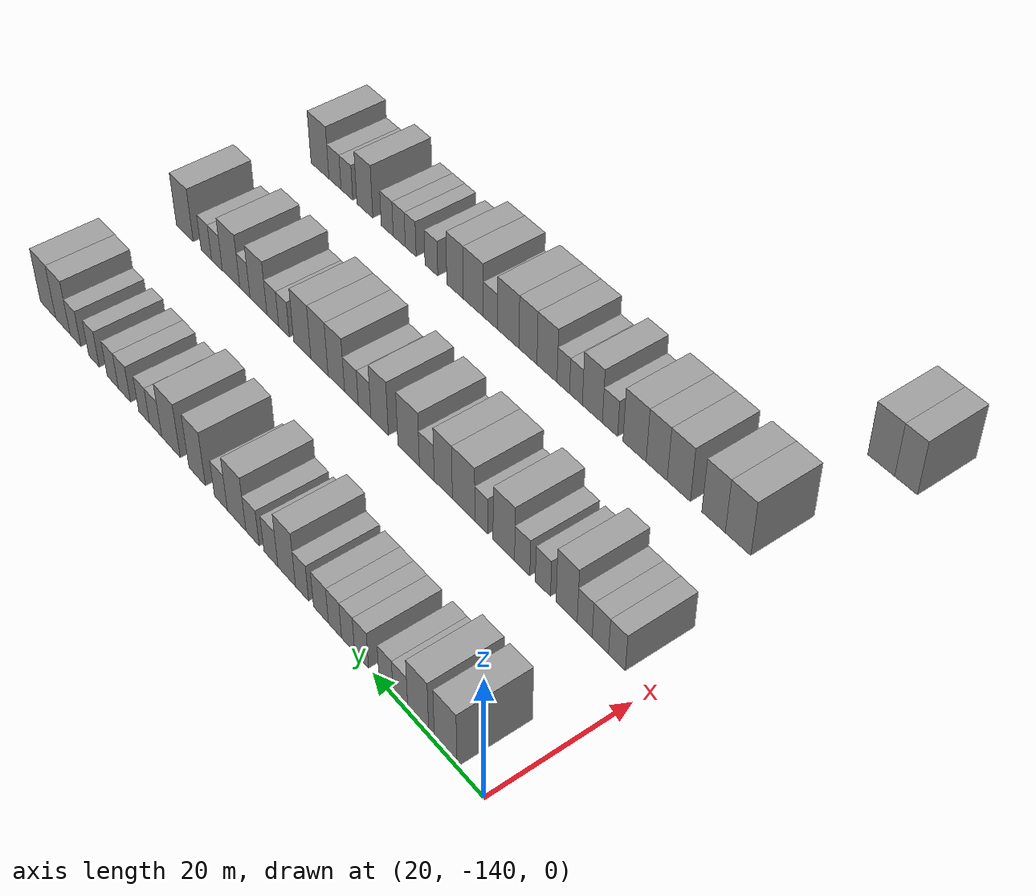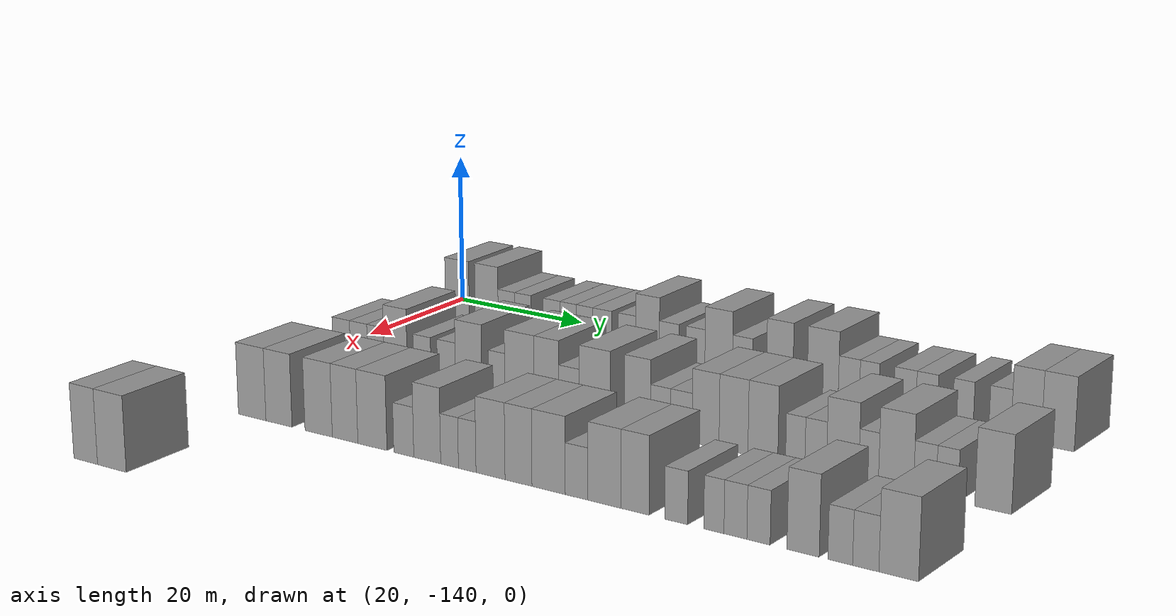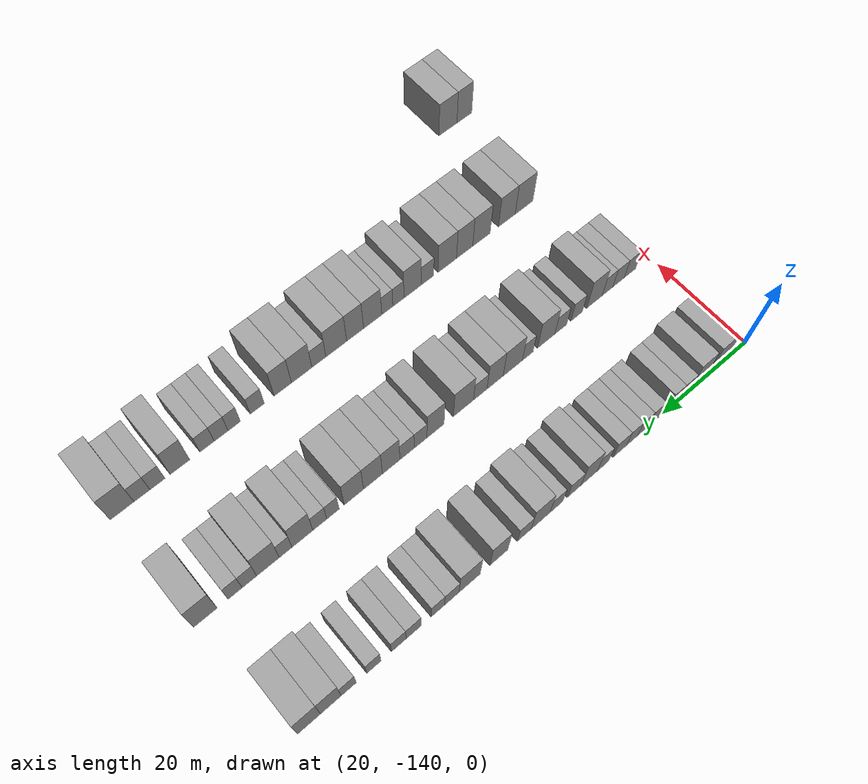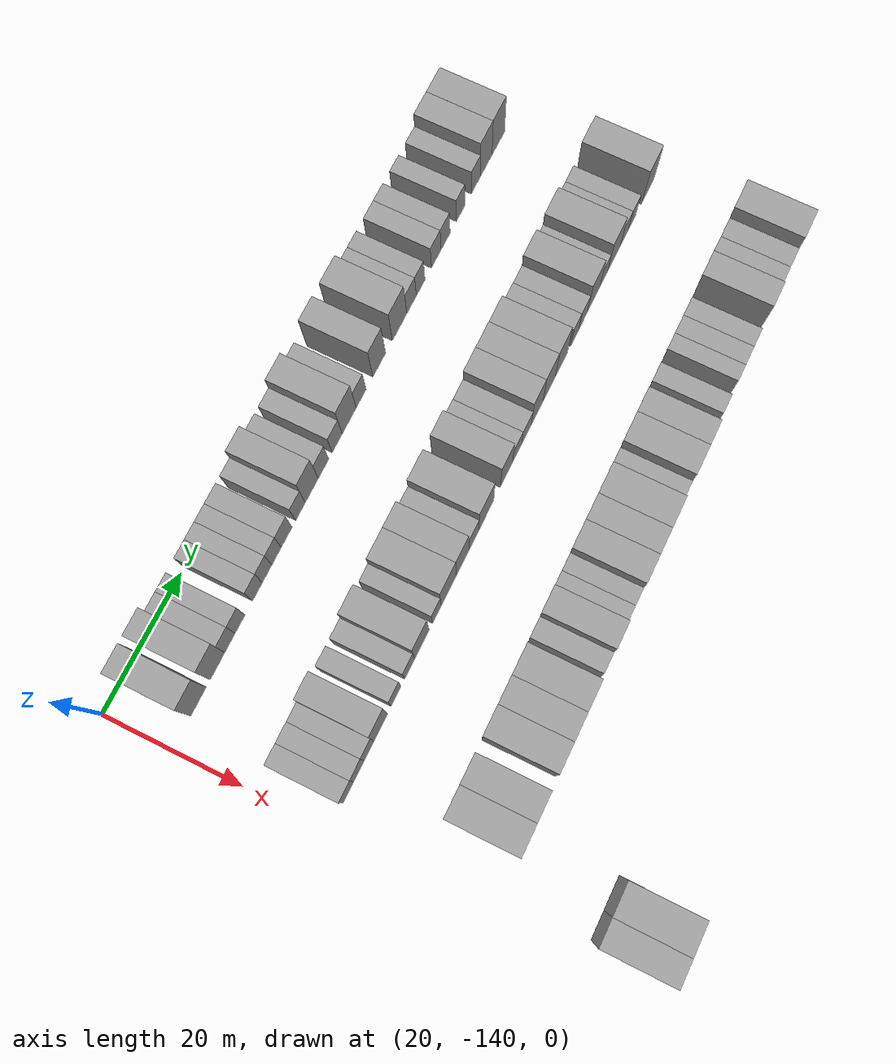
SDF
<sdf version="1.6">
 <world name="default">
  <model name="building_61">
   <static>1</static>
   <pose>25.0000 -133.2945 0 0.000000 0.000000 0.000000</pose>
   <link name="link">
    <pose>0 0 4.50 0 0 0</pose>
    <collision name="collision"><geometry><box><size>10.0000 3.9825 9.0000</size></box></geometry></collision>
    <visual name="visual">
     <cast_shadows>0</cast_shadows>
     <geometry><box><size>10.0000 3.9825 9.0000</size></box></geometry>
     <material>
      <script>
       <uri>model://grey_wall/materials/scripts</uri>
       <uri>model://grey_wall/materials/textures</uri>
       <name>vrc/grey_wall</name>
      </script>
     </material>
    </visual>
   </link>
  </model>
  <model name="building_62">
   <static>1</static>
   <pose>25.0000 -128.4041 0 0.000000 0.000000 0.000000</pose>
   <link name="link">
    <pose>0 0 4.50 0 0 0</pose>
    <collision name="collision"><geometry><box><size>10.0000 3.7982 9.0000</size></box></geometry></collision>
    <visual name="visual">
     <cast_shadows>0</cast_shadows>
     <geometry><box><size>10.0000 3.7982 9.0000</size></box></geometry>
     <material>
      <script>
       <uri>model://grey_wall/materials/scripts</uri>
       <uri>model://grey_wall/materials/textures</uri>
       <name>vrc/grey_wall</name>
      </script>
     </material>
    </visual>
   </link>
  </model>
  <model name="building_63">
   <static>1</static>
   <pose>25.0000 -125.1528 0 0.000000 0.000000 0.000000</pose>
   <link name="link">
    <pose>0 0 3.00 0 0 0</pose>
    <collision name="collision"><geometry><box><size>10.0000 2.7044 6.0000</size></box></geometry></collision>
    <visual name="visual">
     <cast_shadows>0</cast_shadows>
     <geometry><box><size>10.0000 2.7044 6.0000</size></box></geometry>
     <material>
      <script>
       <uri>model://grey_wall/materials/scripts</uri>
       <uri>model://grey_wall/materials/textures</uri>
       <name>vrc/grey_wall</name>
      </script>
     </material>
    </visual>
   </link>
  </model>
  <model name="building_64">
   <static>1</static>
   <pose>25.0000 -122.4836 0 0.000000 0.000000 0.000000</pose>
   <link name="link">
    <pose>0 0 3.00 0 0 0</pose>
    <collision name="collision"><geometry><box><size>10.0000 2.6340 6.0000</size></box></geometry></collision>
    <visual name="visual">
     <cast_shadows>0</cast_shadows>
     <geometry><box><size>10.0000 2.6340 6.0000</size></box></geometry>
     <material>
      <script>
       <uri>model://grey_wall/materials/scripts</uri>
       <uri>model://grey_wall/materials/textures</uri>
       <name>vrc/grey_wall</name>
      </script>
     </material>
    </visual>
   </link>
  </model>
  <model name="building_65">
   <static>1</static>
   <pose>25.0000 -117.8355 0 0.000000 0.000000 0.000000</pose>
   <link name="link">
    <pose>0 0 3.00 0 0 0</pose>
    <collision name="collision"><geometry><box><size>10.0000 2.6623 6.0000</size></box></geometry></collision>
    <visual name="visual">
     <cast_shadows>0</cast_shadows>
     <geometry><box><size>10.0000 2.6623 6.0000</size></box></geometry>
     <material>
      <script>
       <uri>model://grey_wall/materials/scripts</uri>
       <uri>model://grey_wall/materials/textures</uri>
       <name>vrc/grey_wall</name>
      </script>
     </material>
    </visual>
   </link>
  </model>
  <model name="building_66">
   <static>1</static>
   <pose>25.0000 -115.2223 0 0.000000 0.000000 0.000000</pose>
   <link name="link">
    <pose>0 0 3.00 0 0 0</pose>
    <collision name="collision"><geometry><box><size>10.0000 2.5640 6.0000</size></box></geometry></collision>
    <visual name="visual">
     <cast_shadows>0</cast_shadows>
     <geometry><box><size>10.0000 2.5640 6.0000</size></box></geometry>
     <material>
      <script>
       <uri>model://grey_wall/materials/scripts</uri>
       <uri>model://grey_wall/materials/textures</uri>
       <name>vrc/grey_wall</name>
      </script>
     </material>
    </visual>
   </link>
  </model>
  <model name="building_67">
   <static>1</static>
   <pose>25.0000 -112.6563 0 0.000000 0.000000 0.000000</pose>
   <link name="link">
    <pose>0 0 3.00 0 0 0</pose>
    <collision name="collision"><geometry><box><size>10.0000 2.5680 6.0000</size></box></geometry></collision>
    <visual name="visual">
     <cast_shadows>0</cast_shadows>
     <geometry><box><size>10.0000 2.5680 6.0000</size></box></geometry>
     <material>
      <script>
       <uri>model://grey_wall/materials/scripts</uri>
       <uri>model://grey_wall/materials/textures</uri>
       <name>vrc/grey_wall</name>
      </script>
     </material>
    </visual>
   </link>
  </model>
  <model name="building_68">
   <static>1</static>
   <pose>25.0000 -109.8868 0 0.000000 0.000000 0.000000</pose>
   <link name="link">
    <pose>0 0 3.00 0 0 0</pose>
    <collision name="collision"><geometry><box><size>10.0000 2.9711 6.0000</size></box></geometry></collision>
    <visual name="visual">
     <cast_shadows>0</cast_shadows>
     <geometry><box><size>10.0000 2.9711 6.0000</size></box></geometry>
     <material>
      <script>
       <uri>model://grey_wall/materials/scripts</uri>
       <uri>model://grey_wall/materials/textures</uri>
       <name>vrc/grey_wall</name>
      </script>
     </material>
    </visual>
   </link>
  </model>
  <model name="building_69">
   <static>1</static>
   <pose>25.0000 -106.0646 0 0.000000 0.000000 0.000000</pose>
   <link name="link">
    <pose>0 0 3.00 0 0 0</pose>
    <collision name="collision"><geometry><box><size>10.0000 2.6733 6.0000</size></box></geometry></collision>
    <visual name="visual">
     <cast_shadows>0</cast_shadows>
     <geometry><box><size>10.0000 2.6733 6.0000</size></box></geometry>
     <material>
      <script>
       <uri>model://grey_wall/materials/scripts</uri>
       <uri>model://grey_wall/materials/textures</uri>
       <name>vrc/grey_wall</name>
      </script>
     </material>
    </visual>
   </link>
  </model>
  <model name="building_70">
   <static>1</static>
   <pose>25.0000 -102.9174 0 0.000000 0.000000 0.000000</pose>
   <link name="link">
    <pose>0 0 4.50 0 0 0</pose>
    <collision name="collision"><geometry><box><size>10.0000 3.6209 9.0000</size></box></geometry></collision>
    <visual name="visual">
     <cast_shadows>0</cast_shadows>
     <geometry><box><size>10.0000 3.6209 9.0000</size></box></geometry>
     <material>
      <script>
       <uri>model://grey_wall/materials/scripts</uri>
       <uri>model://grey_wall/materials/textures</uri>
       <name>vrc/grey_wall</name>
      </script>
     </material>
    </visual>
   </link>
  </model>
  <model name="building_71">
   <static>1</static>
   <pose>25.0000 -99.6323 0 0.000000 0.000000 0.000000</pose>
   <link name="link">
    <pose>0 0 3.00 0 0 0</pose>
    <collision name="collision"><geometry><box><size>10.0000 2.9495 6.0000</size></box></geometry></collision>
    <visual name="visual">
     <cast_shadows>0</cast_shadows>
     <geometry><box><size>10.0000 2.9495 6.0000</size></box></geometry>
     <material>
      <script>
       <uri>model://grey_wall/materials/scripts</uri>
       <uri>model://grey_wall/materials/textures</uri>
       <name>vrc/grey_wall</name>
      </script>
     </material>
    </visual>
   </link>
  </model>
  <model name="building_72">
   <static>1</static>
   <pose>25.0000 -95.7354 0 0.000000 0.000000 0.000000</pose>
   <link name="link">
    <pose>0 0 3.00 0 0 0</pose>
    <collision name="collision"><geometry><box><size>10.0000 2.8443 6.0000</size></box></geometry></collision>
    <visual name="visual">
     <cast_shadows>0</cast_shadows>
     <geometry><box><size>10.0000 2.8443 6.0000</size></box></geometry>
     <material>
      <script>
       <uri>model://grey_wall/materials/scripts</uri>
       <uri>model://grey_wall/materials/textures</uri>
       <name>vrc/grey_wall</name>
      </script>
     </material>
    </visual>
   </link>
  </model>
  <model name="building_73">
   <static>1</static>
   <pose>25.0000 -92.3011 0 0.000000 0.000000 0.000000</pose>
   <link name="link">
    <pose>0 0 4.50 0 0 0</pose>
    <collision name="collision"><geometry><box><size>10.0000 4.0243 9.0000</size></box></geometry></collision>
    <visual name="visual">
     <cast_shadows>0</cast_shadows>
     <geometry><box><size>10.0000 4.0243 9.0000</size></box></geometry>
     <material>
      <script>
       <uri>model://grey_wall/materials/scripts</uri>
       <uri>model://grey_wall/materials/textures</uri>
       <name>vrc/grey_wall</name>
      </script>
     </material>
    </visual>
   </link>
  </model>
  <model name="building_74">
   <static>1</static>
   <pose>25.0000 -88.8391 0 0.000000 0.000000 0.000000</pose>
   <link name="link">
    <pose>0 0 3.00 0 0 0</pose>
    <collision name="collision"><geometry><box><size>10.0000 2.8996 6.0000</size></box></geometry></collision>
    <visual name="visual">
     <cast_shadows>0</cast_shadows>
     <geometry><box><size>10.0000 2.8996 6.0000</size></box></geometry>
     <material>
      <script>
       <uri>model://grey_wall/materials/scripts</uri>
       <uri>model://grey_wall/materials/textures</uri>
       <name>vrc/grey_wall</name>
      </script>
     </material>
    </visual>
   </link>
  </model>
  <model name="building_75">
   <static>1</static>
   <pose>25.0000 -83.5096 0 0.000000 0.000000 0.000000</pose>
   <link name="link">
    <pose>0 0 4.50 0 0 0</pose>
    <collision name="collision"><geometry><box><size>10.0000 3.7595 9.0000</size></box></geometry></collision>
    <visual name="visual">
     <cast_shadows>0</cast_shadows>
     <geometry><box><size>10.0000 3.7595 9.0000</size></box></geometry>
     <material>
      <script>
       <uri>model://grey_wall/materials/scripts</uri>
       <uri>model://grey_wall/materials/textures</uri>
       <name>vrc/grey_wall</name>
      </script>
     </material>
    </visual>
   </link>
  </model>
  <model name="building_76">
   <static>1</static>
   <pose>25.0000 -77.4636 0 0.000000 0.000000 0.000000</pose>
   <link name="link">
    <pose>0 0 4.50 0 0 0</pose>
    <collision name="collision"><geometry><box><size>10.0000 4.3325 9.0000</size></box></geometry></collision>
    <visual name="visual">
     <cast_shadows>0</cast_shadows>
     <geometry><box><size>10.0000 4.3325 9.0000</size></box></geometry>
     <material>
      <script>
       <uri>model://grey_wall/materials/scripts</uri>
       <uri>model://grey_wall/materials/textures</uri>
       <name>vrc/grey_wall</name>
      </script>
     </material>
    </visual>
   </link>
  </model>
  <model name="building_77">
   <static>1</static>
   <pose>25.0000 -73.8470 0 0.000000 0.000000 0.000000</pose>
   <link name="link">
    <pose>0 0 3.00 0 0 0</pose>
    <collision name="collision"><geometry><box><size>10.0000 2.9005 6.0000</size></box></geometry></collision>
    <visual name="visual">
     <cast_shadows>0</cast_shadows>
     <geometry><box><size>10.0000 2.9005 6.0000</size></box></geometry>
     <material>
      <script>
       <uri>model://grey_wall/materials/scripts</uri>
       <uri>model://grey_wall/materials/textures</uri>
       <name>vrc/grey_wall</name>
      </script>
     </material>
    </visual>
   </link>
  </model>
  <model name="building_78">
   <static>1</static>
   <pose>25.0000 -71.0842 0 0.000000 0.000000 0.000000</pose>
   <link name="link">
    <pose>0 0 3.00 0 0 0</pose>
    <collision name="collision"><geometry><box><size>10.0000 2.6250 6.0000</size></box></geometry></collision>
    <visual name="visual">
     <cast_shadows>0</cast_shadows>
     <geometry><box><size>10.0000 2.6250 6.0000</size></box></geometry>
     <material>
      <script>
       <uri>model://grey_wall/materials/scripts</uri>
       <uri>model://grey_wall/materials/textures</uri>
       <name>vrc/grey_wall</name>
      </script>
     </material>
    </visual>
   </link>
  </model>
  <model name="building_79">
   <static>1</static>
   <pose>25.0000 -66.2901 0 0.000000 0.000000 0.000000</pose>
   <link name="link">
    <pose>0 0 3.00 0 0 0</pose>
    <collision name="collision"><geometry><box><size>10.0000 2.9633 6.0000</size></box></geometry></collision>
    <visual name="visual">
     <cast_shadows>0</cast_shadows>
     <geometry><box><size>10.0000 2.9633 6.0000</size></box></geometry>
     <material>
      <script>
       <uri>model://grey_wall/materials/scripts</uri>
       <uri>model://grey_wall/materials/textures</uri>
       <name>vrc/grey_wall</name>
      </script>
     </material>
    </visual>
   </link>
  </model>
  <model name="building_80">
   <static>1</static>
   <pose>25.0000 -63.4003 0 0.000000 0.000000 0.000000</pose>
   <link name="link">
    <pose>0 0 3.00 0 0 0</pose>
    <collision name="collision"><geometry><box><size>10.0000 2.8163 6.0000</size></box></geometry></collision>
    <visual name="visual">
     <cast_shadows>0</cast_shadows>
     <geometry><box><size>10.0000 2.8163 6.0000</size></box></geometry>
     <material>
      <script>
       <uri>model://grey_wall/materials/scripts</uri>
       <uri>model://grey_wall/materials/textures</uri>
       <name>vrc/grey_wall</name>
      </script>
     </material>
    </visual>
   </link>
  </model>
  <model name="building_81">
   <static>1</static>
   <pose>25.0000 -58.6390 0 0.000000 0.000000 0.000000</pose>
   <link name="link">
    <pose>0 0 3.00 0 0 0</pose>
    <collision name="collision"><geometry><box><size>10.0000 2.7062 6.0000</size></box></geometry></collision>
    <visual name="visual">
     <cast_shadows>0</cast_shadows>
     <geometry><box><size>10.0000 2.7062 6.0000</size></box></geometry>
     <material>
      <script>
       <uri>model://grey_wall/materials/scripts</uri>
       <uri>model://grey_wall/materials/textures</uri>
       <name>vrc/grey_wall</name>
      </script>
     </material>
    </visual>
   </link>
  </model>
  <model name="building_82">
   <static>1</static>
   <pose>25.0000 -53.8731 0 0.000000 0.000000 0.000000</pose>
   <link name="link">
    <pose>0 0 3.00 0 0 0</pose>
    <collision name="collision"><geometry><box><size>10.0000 2.8256 6.0000</size></box></geometry></collision>
    <visual name="visual">
     <cast_shadows>0</cast_shadows>
     <geometry><box><size>10.0000 2.8256 6.0000</size></box></geometry>
     <material>
      <script>
       <uri>model://grey_wall/materials/scripts</uri>
       <uri>model://grey_wall/materials/textures</uri>
       <name>vrc/grey_wall</name>
      </script>
     </material>
    </visual>
   </link>
  </model>
  <model name="building_83">
   <static>1</static>
   <pose>25.0000 -50.5525 0 0.000000 0.000000 0.000000</pose>
   <link name="link">
    <pose>0 0 4.50 0 0 0</pose>
    <collision name="collision"><geometry><box><size>10.0000 3.8157 9.0000</size></box></geometry></collision>
    <visual name="visual">
     <cast_shadows>0</cast_shadows>
     <geometry><box><size>10.0000 3.8157 9.0000</size></box></geometry>
     <material>
      <script>
       <uri>model://grey_wall/materials/scripts</uri>
       <uri>model://grey_wall/materials/textures</uri>
       <name>vrc/grey_wall</name>
      </script>
     </material>
    </visual>
   </link>
  </model>
  <model name="building_84">
   <static>1</static>
   <pose>25.0000 -46.5881 0 0.000000 0.000000 0.000000</pose>
   <link name="link">
    <pose>0 0 4.50 0 0 0</pose>
    <collision name="collision"><geometry><box><size>10.0000 4.1129 9.0000</size></box></geometry></collision>
    <visual name="visual">
     <cast_shadows>0</cast_shadows>
     <geometry><box><size>10.0000 4.1129 9.0000</size></box></geometry>
     <material>
      <script>
       <uri>model://grey_wall/materials/scripts</uri>
       <uri>model://grey_wall/materials/textures</uri>
       <name>vrc/grey_wall</name>
      </script>
     </material>
    </visual>
   </link>
  </model>
  <model name="building_256">
   <static>1</static>
   <pose>47.0000 -134.8797 0 0.000000 0.000000 0.000000</pose>
   <link name="link">
    <pose>0 0 3.00 0 0 0</pose>
    <collision name="collision"><geometry><box><size>10.0000 2.8707 6.0000</size></box></geometry></collision>
    <visual name="visual">
     <cast_shadows>0</cast_shadows>
     <geometry><box><size>10.0000 2.8707 6.0000</size></box></geometry>
     <material>
      <script>
       <uri>model://grey_wall/materials/scripts</uri>
       <uri>model://grey_wall/materials/textures</uri>
       <name>vrc/grey_wall</name>
      </script>
     </material>
    </visual>
   </link>
  </model>
  <model name="building_257">
   <static>1</static>
   <pose>47.0000 -132.0380 0 0.000000 0.000000 0.000000</pose>
   <link name="link">
    <pose>0 0 3.00 0 0 0</pose>
    <collision name="collision"><geometry><box><size>10.0000 2.8127 6.0000</size></box></geometry></collision>
    <visual name="visual">
     <cast_shadows>0</cast_shadows>
     <geometry><box><size>10.0000 2.8127 6.0000</size></box></geometry>
     <material>
      <script>
       <uri>model://grey_wall/materials/scripts</uri>
       <uri>model://grey_wall/materials/textures</uri>
       <name>vrc/grey_wall</name>
      </script>
     </material>
    </visual>
   </link>
  </model>
  <model name="building_258">
   <static>1</static>
   <pose>47.0000 -129.3125 0 0.000000 0.000000 0.000000</pose>
   <link name="link">
    <pose>0 0 3.00 0 0 0</pose>
    <collision name="collision"><geometry><box><size>10.0000 2.6383 6.0000</size></box></geometry></collision>
    <visual name="visual">
     <cast_shadows>0</cast_shadows>
     <geometry><box><size>10.0000 2.6383 6.0000</size></box></geometry>
     <material>
      <script>
       <uri>model://grey_wall/materials/scripts</uri>
       <uri>model://grey_wall/materials/textures</uri>
       <name>vrc/grey_wall</name>
      </script>
     </material>
    </visual>
   </link>
  </model>
  <model name="building_259">
   <static>1</static>
   <pose>47.0000 -126.1210 0 0.000000 0.000000 0.000000</pose>
   <link name="link">
    <pose>0 0 4.50 0 0 0</pose>
    <collision name="collision"><geometry><box><size>10.0000 3.7447 9.0000</size></box></geometry></collision>
    <visual name="visual">
     <cast_shadows>0</cast_shadows>
     <geometry><box><size>10.0000 3.7447 9.0000</size></box></geometry>
     <material>
      <script>
       <uri>model://grey_wall/materials/scripts</uri>
       <uri>model://grey_wall/materials/textures</uri>
       <name>vrc/grey_wall</name>
      </script>
     </material>
    </visual>
   </link>
  </model>
  <model name="building_260">
   <static>1</static>
   <pose>47.0000 -121.8693 0 0.000000 0.000000 0.000000</pose>
   <link name="link">
    <pose>0 0 3.00 0 0 0</pose>
    <collision name="collision"><geometry><box><size>10.0000 2.7587 6.0000</size></box></geometry></collision>
    <visual name="visual">
     <cast_shadows>0</cast_shadows>
     <geometry><box><size>10.0000 2.7587 6.0000</size></box></geometry>
     <material>
      <script>
       <uri>model://grey_wall/materials/scripts</uri>
       <uri>model://grey_wall/materials/textures</uri>
       <name>vrc/grey_wall</name>
      </script>
     </material>
    </visual>
   </link>
  </model>
  <model name="building_261">
   <static>1</static>
   <pose>47.0000 -118.0780 0 0.000000 0.000000 0.000000</pose>
   <link name="link">
    <pose>0 0 3.00 0 0 0</pose>
    <collision name="collision"><geometry><box><size>10.0000 2.8239 6.0000</size></box></geometry></collision>
    <visual name="visual">
     <cast_shadows>0</cast_shadows>
     <geometry><box><size>10.0000 2.8239 6.0000</size></box></geometry>
     <material>
      <script>
       <uri>model://grey_wall/materials/scripts</uri>
       <uri>model://grey_wall/materials/textures</uri>
       <name>vrc/grey_wall</name>
      </script>
     </material>
    </visual>
   </link>
  </model>
  <model name="building_262">
   <static>1</static>
   <pose>47.0000 -114.6399 0 0.000000 0.000000 0.000000</pose>
   <link name="link">
    <pose>0 0 4.50 0 0 0</pose>
    <collision name="collision"><geometry><box><size>10.0000 4.0524 9.0000</size></box></geometry></collision>
    <visual name="visual">
     <cast_shadows>0</cast_shadows>
     <geometry><box><size>10.0000 4.0524 9.0000</size></box></geometry>
     <material>
      <script>
       <uri>model://grey_wall/materials/scripts</uri>
       <uri>model://grey_wall/materials/textures</uri>
       <name>vrc/grey_wall</name>
      </script>
     </material>
    </visual>
   </link>
  </model>
  <model name="building_263">
   <static>1</static>
   <pose>47.0000 -110.3734 0 0.000000 0.000000 0.000000</pose>
   <link name="link">
    <pose>0 0 3.00 0 0 0</pose>
    <collision name="collision"><geometry><box><size>10.0000 2.4806 6.0000</size></box></geometry></collision>
    <visual name="visual">
     <cast_shadows>0</cast_shadows>
     <geometry><box><size>10.0000 2.4806 6.0000</size></box></geometry>
     <material>
      <script>
       <uri>model://grey_wall/materials/scripts</uri>
       <uri>model://grey_wall/materials/textures</uri>
       <name>vrc/grey_wall</name>
      </script>
     </material>
    </visual>
   </link>
  </model>
  <model name="building_264">
   <static>1</static>
   <pose>47.0000 -106.9360 0 0.000000 0.000000 0.000000</pose>
   <link name="link">
    <pose>0 0 4.50 0 0 0</pose>
    <collision name="collision"><geometry><box><size>10.0000 4.3941 9.0000</size></box></geometry></collision>
    <visual name="visual">
     <cast_shadows>0</cast_shadows>
     <geometry><box><size>10.0000 4.3941 9.0000</size></box></geometry>
     <material>
      <script>
       <uri>model://grey_wall/materials/scripts</uri>
       <uri>model://grey_wall/materials/textures</uri>
       <name>vrc/grey_wall</name>
      </script>
     </material>
    </visual>
   </link>
  </model>
  <model name="building_265">
   <static>1</static>
   <pose>47.0000 -102.9288 0 0.000000 0.000000 0.000000</pose>
   <link name="link">
    <pose>0 0 4.50 0 0 0</pose>
    <collision name="collision"><geometry><box><size>10.0000 3.6204 9.0000</size></box></geometry></collision>
    <visual name="visual">
     <cast_shadows>0</cast_shadows>
     <geometry><box><size>10.0000 3.6204 9.0000</size></box></geometry>
     <material>
      <script>
       <uri>model://grey_wall/materials/scripts</uri>
       <uri>model://grey_wall/materials/textures</uri>
       <name>vrc/grey_wall</name>
      </script>
     </material>
    </visual>
   </link>
  </model>
  <model name="building_266">
   <static>1</static>
   <pose>47.0000 -99.6198 0 0.000000 0.000000 0.000000</pose>
   <link name="link">
    <pose>0 0 3.00 0 0 0</pose>
    <collision name="collision"><geometry><box><size>10.0000 2.9974 6.0000</size></box></geometry></collision>
    <visual name="visual">
     <cast_shadows>0</cast_shadows>
     <geometry><box><size>10.0000 2.9974 6.0000</size></box></geometry>
     <material>
      <script>
       <uri>model://grey_wall/materials/scripts</uri>
       <uri>model://grey_wall/materials/textures</uri>
       <name>vrc/grey_wall</name>
      </script>
     </material>
    </visual>
   </link>
  </model>
  <model name="building_267">
   <static>1</static>
   <pose>47.0000 -95.9045 0 0.000000 0.000000 0.000000</pose>
   <link name="link">
    <pose>0 0 4.50 0 0 0</pose>
    <collision name="collision"><geometry><box><size>10.0000 4.4332 9.0000</size></box></geometry></collision>
    <visual name="visual">
     <cast_shadows>0</cast_shadows>
     <geometry><box><size>10.0000 4.4332 9.0000</size></box></geometry>
     <material>
      <script>
       <uri>model://grey_wall/materials/scripts</uri>
       <uri>model://grey_wall/materials/textures</uri>
       <name>vrc/grey_wall</name>
      </script>
     </material>
    </visual>
   </link>
  </model>
  <model name="building_268">
   <static>1</static>
   <pose>47.0000 -89.8443 0 0.000000 0.000000 0.000000</pose>
   <link name="link">
    <pose>0 0 4.50 0 0 0</pose>
    <collision name="collision"><geometry><box><size>10.0000 3.6871 9.0000</size></box></geometry></collision>
    <visual name="visual">
     <cast_shadows>0</cast_shadows>
     <geometry><box><size>10.0000 3.6871 9.0000</size></box></geometry>
     <material>
      <script>
       <uri>model://grey_wall/materials/scripts</uri>
       <uri>model://grey_wall/materials/textures</uri>
       <name>vrc/grey_wall</name>
      </script>
     </material>
    </visual>
   </link>
  </model>
  <model name="building_269">
   <static>1</static>
   <pose>47.0000 -86.6379 0 0.000000 0.000000 0.000000</pose>
   <link name="link">
    <pose>0 0 3.00 0 0 0</pose>
    <collision name="collision"><geometry><box><size>10.0000 2.7257 6.0000</size></box></geometry></collision>
    <visual name="visual">
     <cast_shadows>0</cast_shadows>
     <geometry><box><size>10.0000 2.7257 6.0000</size></box></geometry>
     <material>
      <script>
       <uri>model://grey_wall/materials/scripts</uri>
       <uri>model://grey_wall/materials/textures</uri>
       <name>vrc/grey_wall</name>
      </script>
     </material>
    </visual>
   </link>
  </model>
  <model name="building_270">
   <static>1</static>
   <pose>47.0000 -83.7786 0 0.000000 0.000000 0.000000</pose>
   <link name="link">
    <pose>0 0 3.00 0 0 0</pose>
    <collision name="collision"><geometry><box><size>10.0000 2.9930 6.0000</size></box></geometry></collision>
    <visual name="visual">
     <cast_shadows>0</cast_shadows>
     <geometry><box><size>10.0000 2.9930 6.0000</size></box></geometry>
     <material>
      <script>
       <uri>model://grey_wall/materials/scripts</uri>
       <uri>model://grey_wall/materials/textures</uri>
       <name>vrc/grey_wall</name>
      </script>
     </material>
    </visual>
   </link>
  </model>
  <model name="building_271">
   <static>1</static>
   <pose>47.0000 -80.4532 0 0.000000 0.000000 0.000000</pose>
   <link name="link">
    <pose>0 0 4.50 0 0 0</pose>
    <collision name="collision"><geometry><box><size>10.0000 3.6578 9.0000</size></box></geometry></collision>
    <visual name="visual">
     <cast_shadows>0</cast_shadows>
     <geometry><box><size>10.0000 3.6578 9.0000</size></box></geometry>
     <material>
      <script>
       <uri>model://grey_wall/materials/scripts</uri>
       <uri>model://grey_wall/materials/textures</uri>
       <name>vrc/grey_wall</name>
      </script>
     </material>
    </visual>
   </link>
  </model>
  <model name="building_272">
   <static>1</static>
   <pose>47.0000 -76.6905 0 0.000000 0.000000 0.000000</pose>
   <link name="link">
    <pose>0 0 4.50 0 0 0</pose>
    <collision name="collision"><geometry><box><size>10.0000 3.8677 9.0000</size></box></geometry></collision>
    <visual name="visual">
     <cast_shadows>0</cast_shadows>
     <geometry><box><size>10.0000 3.8677 9.0000</size></box></geometry>
     <material>
      <script>
       <uri>model://grey_wall/materials/scripts</uri>
       <uri>model://grey_wall/materials/textures</uri>
       <name>vrc/grey_wall</name>
      </script>
     </material>
    </visual>
   </link>
  </model>
  <model name="building_273">
   <static>1</static>
   <pose>47.0000 -72.7860 0 0.000000 0.000000 0.000000</pose>
   <link name="link">
    <pose>0 0 4.50 0 0 0</pose>
    <collision name="collision"><geometry><box><size>10.0000 3.9413 9.0000</size></box></geometry></collision>
    <visual name="visual">
     <cast_shadows>0</cast_shadows>
     <geometry><box><size>10.0000 3.9413 9.0000</size></box></geometry>
     <material>
      <script>
       <uri>model://grey_wall/materials/scripts</uri>
       <uri>model://grey_wall/materials/textures</uri>
       <name>vrc/grey_wall</name>
      </script>
     </material>
    </visual>
   </link>
  </model>
  <model name="building_274">
   <static>1</static>
   <pose>47.0000 -68.5644 0 0.000000 0.000000 0.000000</pose>
   <link name="link">
    <pose>0 0 3.00 0 0 0</pose>
    <collision name="collision"><geometry><box><size>10.0000 2.5020 6.0000</size></box></geometry></collision>
    <visual name="visual">
     <cast_shadows>0</cast_shadows>
     <geometry><box><size>10.0000 2.5020 6.0000</size></box></geometry>
     <material>
      <script>
       <uri>model://grey_wall/materials/scripts</uri>
       <uri>model://grey_wall/materials/textures</uri>
       <name>vrc/grey_wall</name>
      </script>
     </material>
    </visual>
   </link>
  </model>
  <model name="building_275">
   <static>1</static>
   <pose>47.0000 -65.9303 0 0.000000 0.000000 0.000000</pose>
   <link name="link">
    <pose>0 0 3.00 0 0 0</pose>
    <collision name="collision"><geometry><box><size>10.0000 2.7661 6.0000</size></box></geometry></collision>
    <visual name="visual">
     <cast_shadows>0</cast_shadows>
     <geometry><box><size>10.0000 2.7661 6.0000</size></box></geometry>
     <material>
      <script>
       <uri>model://grey_wall/materials/scripts</uri>
       <uri>model://grey_wall/materials/textures</uri>
       <name>vrc/grey_wall</name>
      </script>
     </material>
    </visual>
   </link>
  </model>
  <model name="building_276">
   <static>1</static>
   <pose>47.0000 -62.5124 0 0.000000 0.000000 0.000000</pose>
   <link name="link">
    <pose>0 0 4.50 0 0 0</pose>
    <collision name="collision"><geometry><box><size>10.0000 4.0697 9.0000</size></box></geometry></collision>
    <visual name="visual">
     <cast_shadows>0</cast_shadows>
     <geometry><box><size>10.0000 4.0697 9.0000</size></box></geometry>
     <material>
      <script>
       <uri>model://grey_wall/materials/scripts</uri>
       <uri>model://grey_wall/materials/textures</uri>
       <name>vrc/grey_wall</name>
      </script>
     </material>
    </visual>
   </link>
  </model>
  <model name="building_277">
   <static>1</static>
   <pose>47.0000 -59.2409 0 0.000000 0.000000 0.000000</pose>
   <link name="link">
    <pose>0 0 3.00 0 0 0</pose>
    <collision name="collision"><geometry><box><size>10.0000 2.4733 6.0000</size></box></geometry></collision>
    <visual name="visual">
     <cast_shadows>0</cast_shadows>
     <geometry><box><size>10.0000 2.4733 6.0000</size></box></geometry>
     <material>
      <script>
       <uri>model://grey_wall/materials/scripts</uri>
       <uri>model://grey_wall/materials/textures</uri>
       <name>vrc/grey_wall</name>
      </script>
     </material>
    </visual>
   </link>
  </model>
  <model name="building_278">
   <static>1</static>
   <pose>47.0000 -55.8433 0 0.000000 0.000000 0.000000</pose>
   <link name="link">
    <pose>0 0 4.50 0 0 0</pose>
    <collision name="collision"><geometry><box><size>10.0000 4.3219 9.0000</size></box></geometry></collision>
    <visual name="visual">
     <cast_shadows>0</cast_shadows>
     <geometry><box><size>10.0000 4.3219 9.0000</size></box></geometry>
     <material>
      <script>
       <uri>model://grey_wall/materials/scripts</uri>
       <uri>model://grey_wall/materials/textures</uri>
       <name>vrc/grey_wall</name>
      </script>
     </material>
    </visual>
   </link>
  </model>
  <model name="building_279">
   <static>1</static>
   <pose>47.0000 -52.3166 0 0.000000 0.000000 0.000000</pose>
   <link name="link">
    <pose>0 0 3.00 0 0 0</pose>
    <collision name="collision"><geometry><box><size>10.0000 2.7316 6.0000</size></box></geometry></collision>
    <visual name="visual">
     <cast_shadows>0</cast_shadows>
     <geometry><box><size>10.0000 2.7316 6.0000</size></box></geometry>
     <material>
      <script>
       <uri>model://grey_wall/materials/scripts</uri>
       <uri>model://grey_wall/materials/textures</uri>
       <name>vrc/grey_wall</name>
      </script>
     </material>
    </visual>
   </link>
  </model>
  <model name="building_280">
   <static>1</static>
   <pose>47.0000 -49.6281 0 0.000000 0.000000 0.000000</pose>
   <link name="link">
    <pose>0 0 3.00 0 0 0</pose>
    <collision name="collision"><geometry><box><size>10.0000 2.6455 6.0000</size></box></geometry></collision>
    <visual name="visual">
     <cast_shadows>0</cast_shadows>
     <geometry><box><size>10.0000 2.6455 6.0000</size></box></geometry>
     <material>
      <script>
       <uri>model://grey_wall/materials/scripts</uri>
       <uri>model://grey_wall/materials/textures</uri>
       <name>vrc/grey_wall</name>
      </script>
     </material>
    </visual>
   </link>
  </model>
  <model name="building_281">
   <static>1</static>
   <pose>47.0000 -44.1357 0 0.000000 0.000000 0.000000</pose>
   <link name="link">
    <pose>0 0 4.50 0 0 0</pose>
    <collision name="collision"><geometry><box><size>10.0000 4.3392 9.0000</size></box></geometry></collision>
    <visual name="visual">
     <cast_shadows>0</cast_shadows>
     <geometry><box><size>10.0000 4.3392 9.0000</size></box></geometry>
     <material>
      <script>
       <uri>model://grey_wall/materials/scripts</uri>
       <uri>model://grey_wall/materials/textures</uri>
       <name>vrc/grey_wall</name>
      </script>
     </material>
    </visual>
   </link>
  </model>
  <model name="building_443">
   <static>1</static>
   <pose>69.0000 -130.2370 0 0.000000 0.000000 0.000000</pose>
   <link name="link">
    <pose>0 0 4.50 0 0 0</pose>
    <collision name="collision"><geometry><box><size>10.0000 4.3600 9.0000</size></box></geometry></collision>
    <visual name="visual">
     <cast_shadows>0</cast_shadows>
     <geometry><box><size>10.0000 4.3600 9.0000</size></box></geometry>
     <material>
      <script>
       <uri>model://grey_wall/materials/scripts</uri>
       <uri>model://grey_wall/materials/textures</uri>
       <name>vrc/grey_wall</name>
      </script>
     </material>
    </visual>
   </link>
  </model>
  <model name="building_444">
   <static>1</static>
   <pose>69.0000 -126.0139 0 0.000000 0.000000 0.000000</pose>
   <link name="link">
    <pose>0 0 4.50 0 0 0</pose>
    <collision name="collision"><geometry><box><size>10.0000 4.0861 9.0000</size></box></geometry></collision>
    <visual name="visual">
     <cast_shadows>0</cast_shadows>
     <geometry><box><size>10.0000 4.0861 9.0000</size></box></geometry>
     <material>
      <script>
       <uri>model://grey_wall/materials/scripts</uri>
       <uri>model://grey_wall/materials/textures</uri>
       <name>vrc/grey_wall</name>
      </script>
     </material>
    </visual>
   </link>
  </model>
  <model name="building_445">
   <static>1</static>
   <pose>69.0000 -119.8840 0 0.000000 0.000000 0.000000</pose>
   <link name="link">
    <pose>0 0 4.50 0 0 0</pose>
    <collision name="collision"><geometry><box><size>10.0000 4.1737 9.0000</size></box></geometry></collision>
    <visual name="visual">
     <cast_shadows>0</cast_shadows>
     <geometry><box><size>10.0000 4.1737 9.0000</size></box></geometry>
     <material>
      <script>
       <uri>model://grey_wall/materials/scripts</uri>
       <uri>model://grey_wall/materials/textures</uri>
       <name>vrc/grey_wall</name>
      </script>
     </material>
    </visual>
   </link>
  </model>
  <model name="building_446">
   <static>1</static>
   <pose>69.0000 -115.8743 0 0.000000 0.000000 0.000000</pose>
   <link name="link">
    <pose>0 0 4.50 0 0 0</pose>
    <collision name="collision"><geometry><box><size>10.0000 3.8456 9.0000</size></box></geometry></collision>
    <visual name="visual">
     <cast_shadows>0</cast_shadows>
     <geometry><box><size>10.0000 3.8456 9.0000</size></box></geometry>
     <material>
      <script>
       <uri>model://grey_wall/materials/scripts</uri>
       <uri>model://grey_wall/materials/textures</uri>
       <name>vrc/grey_wall</name>
      </script>
     </material>
    </visual>
   </link>
  </model>
  <model name="building_447">
   <static>1</static>
   <pose>69.0000 -111.7937 0 0.000000 0.000000 0.000000</pose>
   <link name="link">
    <pose>0 0 4.50 0 0 0</pose>
    <collision name="collision"><geometry><box><size>10.0000 4.3155 9.0000</size></box></geometry></collision>
    <visual name="visual">
     <cast_shadows>0</cast_shadows>
     <geometry><box><size>10.0000 4.3155 9.0000</size></box></geometry>
     <material>
      <script>
       <uri>model://grey_wall/materials/scripts</uri>
       <uri>model://grey_wall/materials/textures</uri>
       <name>vrc/grey_wall</name>
      </script>
     </material>
    </visual>
   </link>
  </model>
  <model name="building_448">
   <static>1</static>
   <pose>69.0000 -107.1810 0 0.000000 0.000000 0.000000</pose>
   <link name="link">
    <pose>0 0 3.00 0 0 0</pose>
    <collision name="collision"><geometry><box><size>10.0000 2.9099 6.0000</size></box></geometry></collision>
    <visual name="visual">
     <cast_shadows>0</cast_shadows>
     <geometry><box><size>10.0000 2.9099 6.0000</size></box></geometry>
     <material>
      <script>
       <uri>model://grey_wall/materials/scripts</uri>
       <uri>model://grey_wall/materials/textures</uri>
       <name>vrc/grey_wall</name>
      </script>
     </material>
    </visual>
   </link>
  </model>
  <model name="building_449">
   <static>1</static>
   <pose>69.0000 -103.7923 0 0.000000 0.000000 0.000000</pose>
   <link name="link">
    <pose>0 0 4.50 0 0 0</pose>
    <collision name="collision"><geometry><box><size>10.0000 3.8675 9.0000</size></box></geometry></collision>
    <visual name="visual">
     <cast_shadows>0</cast_shadows>
     <geometry><box><size>10.0000 3.8675 9.0000</size></box></geometry>
     <material>
      <script>
       <uri>model://grey_wall/materials/scripts</uri>
       <uri>model://grey_wall/materials/textures</uri>
       <name>vrc/grey_wall</name>
      </script>
     </material>
    </visual>
   </link>
  </model>
  <model name="building_450">
   <static>1</static>
   <pose>69.0000 -100.5979 0 0.000000 0.000000 0.000000</pose>
   <link name="link">
    <pose>0 0 3.00 0 0 0</pose>
    <collision name="collision"><geometry><box><size>10.0000 2.5214 6.0000</size></box></geometry></collision>
    <visual name="visual">
     <cast_shadows>0</cast_shadows>
     <geometry><box><size>10.0000 2.5214 6.0000</size></box></geometry>
     <material>
      <script>
       <uri>model://grey_wall/materials/scripts</uri>
       <uri>model://grey_wall/materials/textures</uri>
       <name>vrc/grey_wall</name>
      </script>
     </material>
    </visual>
   </link>
  </model>
  <model name="building_451">
   <static>1</static>
   <pose>69.0000 -98.1019 0 0.000000 0.000000 0.000000</pose>
   <link name="link">
    <pose>0 0 3.00 0 0 0</pose>
    <collision name="collision"><geometry><box><size>10.0000 2.4706 6.0000</size></box></geometry></collision>
    <visual name="visual">
     <cast_shadows>0</cast_shadows>
     <geometry><box><size>10.0000 2.4706 6.0000</size></box></geometry>
     <material>
      <script>
       <uri>model://grey_wall/materials/scripts</uri>
       <uri>model://grey_wall/materials/textures</uri>
       <name>vrc/grey_wall</name>
      </script>
     </material>
    </visual>
   </link>
  </model>
  <model name="building_452">
   <static>1</static>
   <pose>69.0000 -94.8513 0 0.000000 0.000000 0.000000</pose>
   <link name="link">
    <pose>0 0 4.50 0 0 0</pose>
    <collision name="collision"><geometry><box><size>10.0000 4.0306 9.0000</size></box></geometry></collision>
    <visual name="visual">
     <cast_shadows>0</cast_shadows>
     <geometry><box><size>10.0000 4.0306 9.0000</size></box></geometry>
     <material>
      <script>
       <uri>model://grey_wall/materials/scripts</uri>
       <uri>model://grey_wall/materials/textures</uri>
       <name>vrc/grey_wall</name>
      </script>
     </material>
    </visual>
   </link>
  </model>
  <model name="building_453">
   <static>1</static>
   <pose>69.0000 -90.9968 0 0.000000 0.000000 0.000000</pose>
   <link name="link">
    <pose>0 0 4.50 0 0 0</pose>
    <collision name="collision"><geometry><box><size>10.0000 3.6783 9.0000</size></box></geometry></collision>
    <visual name="visual">
     <cast_shadows>0</cast_shadows>
     <geometry><box><size>10.0000 3.6783 9.0000</size></box></geometry>
     <material>
      <script>
       <uri>model://grey_wall/materials/scripts</uri>
       <uri>model://grey_wall/materials/textures</uri>
       <name>vrc/grey_wall</name>
      </script>
     </material>
    </visual>
   </link>
  </model>
  <model name="building_454">
   <static>1</static>
   <pose>69.0000 -86.9176 0 0.000000 0.000000 0.000000</pose>
   <link name="link">
    <pose>0 0 4.50 0 0 0</pose>
    <collision name="collision"><geometry><box><size>10.0000 4.4802 9.0000</size></box></geometry></collision>
    <visual name="visual">
     <cast_shadows>0</cast_shadows>
     <geometry><box><size>10.0000 4.4802 9.0000</size></box></geometry>
     <material>
      <script>
       <uri>model://grey_wall/materials/scripts</uri>
       <uri>model://grey_wall/materials/textures</uri>
       <name>vrc/grey_wall</name>
      </script>
     </material>
    </visual>
   </link>
  </model>
  <model name="building_455">
   <static>1</static>
   <pose>69.0000 -83.1786 0 0.000000 0.000000 0.000000</pose>
   <link name="link">
    <pose>0 0 3.00 0 0 0</pose>
    <collision name="collision"><geometry><box><size>10.0000 2.9978 6.0000</size></box></geometry></collision>
    <visual name="visual">
     <cast_shadows>0</cast_shadows>
     <geometry><box><size>10.0000 2.9978 6.0000</size></box></geometry>
     <material>
      <script>
       <uri>model://grey_wall/materials/scripts</uri>
       <uri>model://grey_wall/materials/textures</uri>
       <name>vrc/grey_wall</name>
      </script>
     </material>
    </visual>
   </link>
  </model>
  <model name="building_456">
   <static>1</static>
   <pose>69.0000 -79.5294 0 0.000000 0.000000 0.000000</pose>
   <link name="link">
    <pose>0 0 4.50 0 0 0</pose>
    <collision name="collision"><geometry><box><size>10.0000 4.3005 9.0000</size></box></geometry></collision>
    <visual name="visual">
     <cast_shadows>0</cast_shadows>
     <geometry><box><size>10.0000 4.3005 9.0000</size></box></geometry>
     <material>
      <script>
       <uri>model://grey_wall/materials/scripts</uri>
       <uri>model://grey_wall/materials/textures</uri>
       <name>vrc/grey_wall</name>
      </script>
     </material>
    </visual>
   </link>
  </model>
  <model name="building_457">
   <static>1</static>
   <pose>69.0000 -75.5673 0 0.000000 0.000000 0.000000</pose>
   <link name="link">
    <pose>0 0 4.50 0 0 0</pose>
    <collision name="collision"><geometry><box><size>10.0000 3.6239 9.0000</size></box></geometry></collision>
    <visual name="visual">
     <cast_shadows>0</cast_shadows>
     <geometry><box><size>10.0000 3.6239 9.0000</size></box></geometry>
     <material>
      <script>
       <uri>model://grey_wall/materials/scripts</uri>
       <uri>model://grey_wall/materials/textures</uri>
       <name>vrc/grey_wall</name>
      </script>
     </material>
    </visual>
   </link>
  </model>
  <model name="building_458">
   <static>1</static>
   <pose>69.0000 -70.3203 0 0.000000 0.000000 0.000000</pose>
   <link name="link">
    <pose>0 0 3.00 0 0 0</pose>
    <collision name="collision"><geometry><box><size>10.0000 2.8702 6.0000</size></box></geometry></collision>
    <visual name="visual">
     <cast_shadows>0</cast_shadows>
     <geometry><box><size>10.0000 2.8702 6.0000</size></box></geometry>
     <material>
      <script>
       <uri>model://grey_wall/materials/scripts</uri>
       <uri>model://grey_wall/materials/textures</uri>
       <name>vrc/grey_wall</name>
      </script>
     </material>
    </visual>
   </link>
  </model>
  <model name="building_459">
   <static>1</static>
   <pose>69.0000 -65.6443 0 0.000000 0.000000 0.000000</pose>
   <link name="link">
    <pose>0 0 3.00 0 0 0</pose>
    <collision name="collision"><geometry><box><size>10.0000 2.4816 6.0000</size></box></geometry></collision>
    <visual name="visual">
     <cast_shadows>0</cast_shadows>
     <geometry><box><size>10.0000 2.4816 6.0000</size></box></geometry>
     <material>
      <script>
       <uri>model://grey_wall/materials/scripts</uri>
       <uri>model://grey_wall/materials/textures</uri>
       <name>vrc/grey_wall</name>
      </script>
     </material>
    </visual>
   </link>
  </model>
  <model name="building_460">
   <static>1</static>
   <pose>69.0000 -63.0083 0 0.000000 0.000000 0.000000</pose>
   <link name="link">
    <pose>0 0 3.00 0 0 0</pose>
    <collision name="collision"><geometry><box><size>10.0000 2.7904 6.0000</size></box></geometry></collision>
    <visual name="visual">
     <cast_shadows>0</cast_shadows>
     <geometry><box><size>10.0000 2.7904 6.0000</size></box></geometry>
     <material>
      <script>
       <uri>model://grey_wall/materials/scripts</uri>
       <uri>model://grey_wall/materials/textures</uri>
       <name>vrc/grey_wall</name>
      </script>
     </material>
    </visual>
   </link>
  </model>
  <model name="building_461">
   <static>1</static>
   <pose>69.0000 -60.2127 0 0.000000 0.000000 0.000000</pose>
   <link name="link">
    <pose>0 0 3.00 0 0 0</pose>
    <collision name="collision"><geometry><box><size>10.0000 2.8009 6.0000</size></box></geometry></collision>
    <visual name="visual">
     <cast_shadows>0</cast_shadows>
     <geometry><box><size>10.0000 2.8009 6.0000</size></box></geometry>
     <material>
      <script>
       <uri>model://grey_wall/materials/scripts</uri>
       <uri>model://grey_wall/materials/textures</uri>
       <name>vrc/grey_wall</name>
      </script>
     </material>
    </visual>
   </link>
  </model>
  <model name="building_462">
   <static>1</static>
   <pose>69.0000 -54.9127 0 0.000000 0.000000 0.000000</pose>
   <link name="link">
    <pose>0 0 4.50 0 0 0</pose>
    <collision name="collision"><geometry><box><size>10.0000 3.7990 9.0000</size></box></geometry></collision>
    <visual name="visual">
     <cast_shadows>0</cast_shadows>
     <geometry><box><size>10.0000 3.7990 9.0000</size></box></geometry>
     <material>
      <script>
       <uri>model://grey_wall/materials/scripts</uri>
       <uri>model://grey_wall/materials/textures</uri>
       <name>vrc/grey_wall</name>
      </script>
     </material>
    </visual>
   </link>
  </model>
  <model name="building_463">
   <static>1</static>
   <pose>69.0000 -50.5843 0 0.000000 0.000000 0.000000</pose>
   <link name="link">
    <pose>0 0 3.00 0 0 0</pose>
    <collision name="collision"><geometry><box><size>10.0000 2.8578 6.0000</size></box></geometry></collision>
    <visual name="visual">
     <cast_shadows>0</cast_shadows>
     <geometry><box><size>10.0000 2.8578 6.0000</size></box></geometry>
     <material>
      <script>
       <uri>model://grey_wall/materials/scripts</uri>
       <uri>model://grey_wall/materials/textures</uri>
       <name>vrc/grey_wall</name>
      </script>
     </material>
    </visual>
   </link>
  </model>
  <model name="building_464">
   <static>1</static>
   <pose>69.0000 -47.6574 0 0.000000 0.000000 0.000000</pose>
   <link name="link">
    <pose>0 0 3.00 0 0 0</pose>
    <collision name="collision"><geometry><box><size>10.0000 2.9961 6.0000</size></box></geometry></collision>
    <visual name="visual">
     <cast_shadows>0</cast_shadows>
     <geometry><box><size>10.0000 2.9961 6.0000</size></box></geometry>
     <material>
      <script>
       <uri>model://grey_wall/materials/scripts</uri>
       <uri>model://grey_wall/materials/textures</uri>
       <name>vrc/grey_wall</name>
      </script>
     </material>
    </visual>
   </link>
  </model>
  <model name="building_465">
   <static>1</static>
   <pose>69.0000 -43.9247 0 0.000000 0.000000 0.000000</pose>
   <link name="link">
    <pose>0 0 4.50 0 0 0</pose>
    <collision name="collision"><geometry><box><size>10.0000 4.4692 9.0000</size></box></geometry></collision>
    <visual name="visual">
     <cast_shadows>0</cast_shadows>
     <geometry><box><size>10.0000 4.4692 9.0000</size></box></geometry>
     <material>
      <script>
       <uri>model://grey_wall/materials/scripts</uri>
       <uri>model://grey_wall/materials/textures</uri>
       <name>vrc/grey_wall</name>
      </script>
     </material>
    </visual>
   </link>
  </model>
  <model name="building_629">
   <static>1</static>
   <pose>91.0000 -135.4930 0 0.000000 0.000000 0.000000</pose>
   <link name="link">
    <pose>0 0 4.50 0 0 0</pose>
    <collision name="collision"><geometry><box><size>10.0000 3.7478 9.0000</size></box></geometry></collision>
    <visual name="visual">
     <cast_shadows>0</cast_shadows>
     <geometry><box><size>10.0000 3.7478 9.0000</size></box></geometry>
     <material>
      <script>
       <uri>model://grey_wall/materials/scripts</uri>
       <uri>model://grey_wall/materials/textures</uri>
       <name>vrc/grey_wall</name>
      </script>
     </material>
    </visual>
   </link>
  </model>
  <model name="building_630">
   <static>1</static>
   <pose>91.0000 -131.3754 0 0.000000 0.000000 0.000000</pose>
   <link name="link">
    <pose>0 0 4.50 0 0 0</pose>
    <collision name="collision"><geometry><box><size>10.0000 4.4874 9.0000</size></box></geometry></collision>
    <visual name="visual">
     <cast_shadows>0</cast_shadows>
     <geometry><box><size>10.0000 4.4874 9.0000</size></box></geometry>
     <material>
      <script>
       <uri>model://grey_wall/materials/scripts</uri>
       <uri>model://grey_wall/materials/textures</uri>
       <name>vrc/grey_wall</name>
      </script>
     </material>
    </visual>
   </link>
  </model>
 </world>
</sdf>
